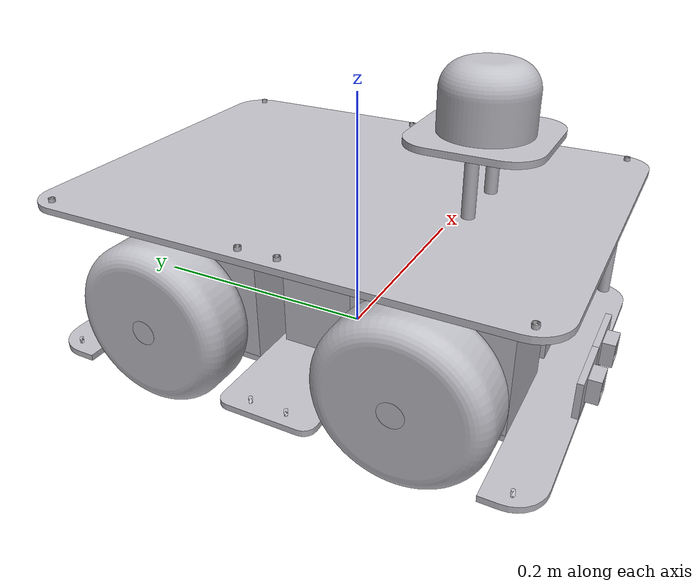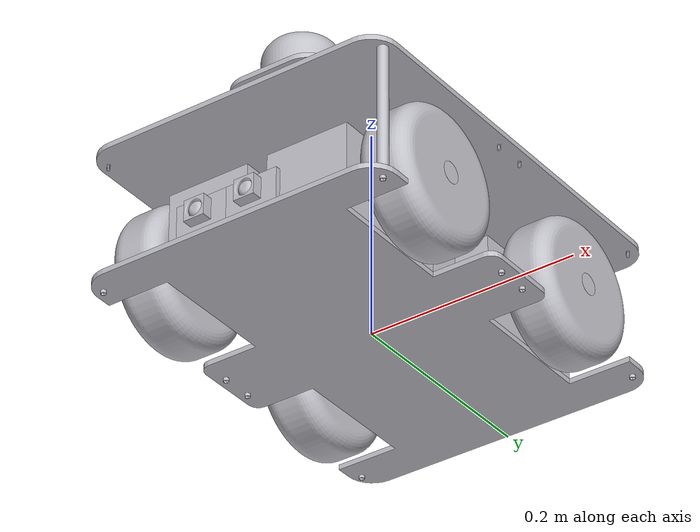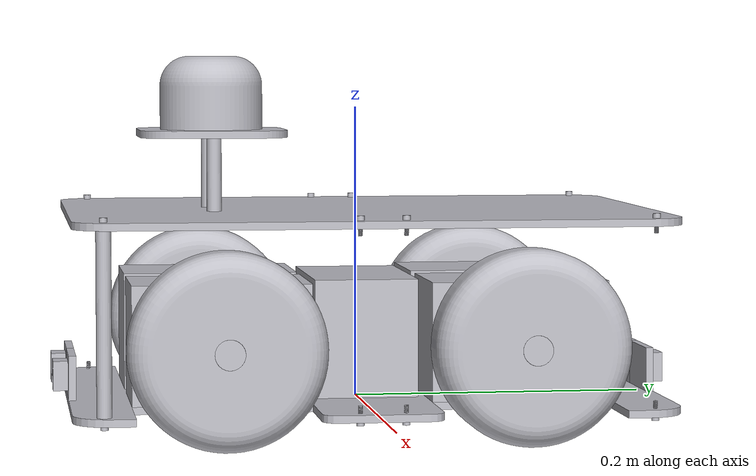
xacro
<?xml version="1.0" ?>
<robot name="robo_car" xmlns:xacro="http://www.ros.org/wiki/xacro">

<xacro:include filename="$(find robo_car_description)/urdf/materials.xacro" />
<xacro:include filename="$(find robo_car_description)/urdf/robo_car.trans" />
<xacro:include filename="$(find robo_car_description)/urdf/robo_car.gazebo" />
<link name="base_link">
  <inertial>
    <origin xyz="4.846217046677697e-08 -6.179082119768317e-08 0.0025" rpy="0 0 0"/>
    <mass value="3.5529521910732096"/>
    <inertia ixx="0.049309" iyy="0.018159" izz="0.067453" ixy="-0.0" iyz="0.0" ixz="0.0"/>
  </inertial>
  <visual>
    <origin xyz="0 0 0" rpy="0 0 0"/>
    <geometry>
      <mesh filename="package://robo_car_description/meshes/base_link.stl" scale="0.001 0.001 0.001"/>
    </geometry>
    <material name="silver"/>
  </visual>
  <collision>
    <origin xyz="0 0 0" rpy="0 0 0"/>
    <geometry>
      <mesh filename="package://robo_car_description/meshes/base_link.stl" scale="0.001 0.001 0.001"/>
    </geometry>
  </collision>
</link>

<link name="lidar_1">
  <inertial>
    <origin xyz="3.581160647436829e-07 1.942890293094024e-16 0.023103677466076777" rpy="0 0 0"/>
    <mass value="1.381244167216492"/>
    <inertia ixx="0.000654" iyy="0.000654" izz="0.000799" ixy="0.0" iyz="0.0" ixz="0.0"/>
  </inertial>
  <visual>
    <origin xyz="-1e-05 0.1 -0.185" rpy="0 0 0"/>
    <geometry>
      <mesh filename="package://robo_car_description/meshes/lidar_1.stl" scale="0.001 0.001 0.001"/>
    </geometry>
    <material name="silver"/>
  </visual>
  <collision>
    <origin xyz="-1e-05 0.1 -0.185" rpy="0 0 0"/>
    <geometry>
      <mesh filename="package://robo_car_description/meshes/lidar_1.stl" scale="0.001 0.001 0.001"/>
    </geometry>
  </collision>
</link>

<link name="top_sensor_base_1">
  <inertial>
    <origin xyz="0.02499828039379778 1.8041124150158794e-16 0.0025000000000000022" rpy="0 0 0"/>
    <mass value="0.3709181375758838"/>
    <inertia ixx="0.000286" iyy="0.000286" izz="0.00057" ixy="0.0" iyz="0.0" ixz="0.0"/>
  </inertial>
  <visual>
    <origin xyz="0.02499 0.1 -0.18" rpy="0 0 0"/>
    <geometry>
      <mesh filename="package://robo_car_description/meshes/top_sensor_base_1.stl" scale="0.001 0.001 0.001"/>
    </geometry>
    <material name="silver"/>
  </visual>
  <collision>
    <origin xyz="0.02499 0.1 -0.18" rpy="0 0 0"/>
    <geometry>
      <mesh filename="package://robo_car_description/meshes/top_sensor_base_1.stl" scale="0.001 0.001 0.001"/>
    </geometry>
  </collision>
</link>

<link name="top_left_front_nut_1">
  <inertial>
    <origin xyz="-3.540865805562454e-07 9.714065274391004e-09 -0.0027956933787600113" rpy="0 0 0"/>
    <mass value="0.0006726823080794735"/>
    <inertia ixx="0.0" iyy="0.0" izz="0.0" ixy="-0.0" iyz="0.0" ixz="-0.0"/>
  </inertial>
  <visual>
    <origin xyz="-0.13999 0.18 -0.13" rpy="0 0 0"/>
    <geometry>
      <mesh filename="package://robo_car_description/meshes/top_left_front_nut_1.stl" scale="0.001 0.001 0.001"/>
    </geometry>
    <material name="silver"/>
  </visual>
  <collision>
    <origin xyz="-0.13999 0.18 -0.13" rpy="0 0 0"/>
    <geometry>
      <mesh filename="package://robo_car_description/meshes/top_left_front_nut_1.stl" scale="0.001 0.001 0.001"/>
    </geometry>
  </collision>
</link>

<link name="top_body_1">
  <inertial>
    <origin xyz="-0.14000035934255764 0.1800118408863916 0.0025000000000000022" rpy="0 0 0"/>
    <mass value="0.7091932888683"/>
    <inertia ixx="0.009379" iyy="0.005274" izz="0.01465" ixy="-0.0" iyz="0.0" ixz="0.0"/>
  </inertial>
  <visual>
    <origin xyz="-0.13999 0.18 -0.125" rpy="0 0 0"/>
    <geometry>
      <mesh filename="package://robo_car_description/meshes/top_body_1.stl" scale="0.001 0.001 0.001"/>
    </geometry>
    <material name="silver"/>
  </visual>
  <collision>
    <origin xyz="-0.13999 0.18 -0.125" rpy="0 0 0"/>
    <geometry>
      <mesh filename="package://robo_car_description/meshes/top_body_1.stl" scale="0.001 0.001 0.001"/>
    </geometry>
  </collision>
</link>

<link name="left_front_spacer_1">
  <inertial>
    <origin xyz="-3.5811604917612705e-07 5.551115123125783e-17 0.060000000000000046" rpy="0 0 0"/>
    <mass value="0.06732590136275694"/>
    <inertia ixx="8.1e-05" iyy="8.1e-05" izz="1e-06" ixy="0.0" iyz="0.0" ixz="-0.0"/>
  </inertial>
  <visual>
    <origin xyz="-0.13999 0.18 -0.005" rpy="0 0 0"/>
    <geometry>
      <mesh filename="package://robo_car_description/meshes/left_front_spacer_1.stl" scale="0.001 0.001 0.001"/>
    </geometry>
    <material name="silver"/>
  </visual>
  <collision>
    <origin xyz="-0.13999 0.18 -0.005" rpy="0 0 0"/>
    <geometry>
      <mesh filename="package://robo_car_description/meshes/left_front_spacer_1.stl" scale="0.001 0.001 0.001"/>
    </geometry>
  </collision>
</link>

<link name="front_left_sensor_base_1">
  <inertial>
    <origin xyz="0.025 0.0025000000000000022 0.015" rpy="0 0 0"/>
    <mass value="0.058875"/>
    <inertia ixx="5e-06" iyy="1.7e-05" izz="1.2e-05" ixy="-0.0" iyz="-0.0" ixz="0.0"/>
  </inertial>
  <visual>
    <origin xyz="-0.0 0.2 -0.005" rpy="0 0 0"/>
    <geometry>
      <mesh filename="package://robo_car_description/meshes/front_left_sensor_base_1.stl" scale="0.001 0.001 0.001"/>
    </geometry>
    <material name="silver"/>
  </visual>
  <collision>
    <origin xyz="-0.0 0.2 -0.005" rpy="0 0 0"/>
    <geometry>
      <mesh filename="package://robo_car_description/meshes/front_left_sensor_base_1.stl" scale="0.001 0.001 0.001"/>
    </geometry>
  </collision>
</link>

<link name="front_left_sensor_camera_base_1">
  <inertial>
    <origin xyz="2.2309584735147325e-13 -0.004272796235665149 0.0" rpy="0 0 0"/>
    <mass value="0.02438220210748266"/>
    <inertia ixx="1e-06" iyy="2e-06" izz="1e-06" ixy="0.0" iyz="0.0" ixz="-0.0"/>
  </inertial>
  <visual>
    <origin xyz="-0.025 0.2 -0.02" rpy="0 0 0"/>
    <geometry>
      <mesh filename="package://robo_car_description/meshes/front_left_sensor_camera_base_1.stl" scale="0.001 0.001 0.001"/>
    </geometry>
    <material name="silver"/>
  </visual>
  <collision>
    <origin xyz="-0.025 0.2 -0.02" rpy="0 0 0"/>
    <geometry>
      <mesh filename="package://robo_car_description/meshes/front_left_sensor_camera_base_1.stl" scale="0.001 0.001 0.001"/>
    </geometry>
  </collision>
</link>

<link name="left_front_wheel_1">
  <inertial>
    <origin xyz="-0.024999999999999994 -2.6867397195928788e-14 -6.938893903907228e-18" rpy="0 0 0"/>
    <mass value="4.7927883092493"/>
    <inertia ixx="0.009877" iyy="0.005859" izz="0.005859" ixy="-0.0" iyz="-0.0" ixz="0.0"/>
  </inertial>
  <visual>
    <origin xyz="-0.15 0.1 -0.045" rpy="0 0 0"/>
    <geometry>
      <mesh filename="package://robo_car_description/meshes/left_front_wheel_1.stl" scale="0.001 0.001 0.001"/>
    </geometry>
    <material name="silver"/>
  </visual>
  <collision>
    <origin xyz="-0.15 0.1 -0.045" rpy="0 0 0"/>
    <geometry>
      <mesh filename="package://robo_car_description/meshes/left_front_wheel_1.stl" scale="0.001 0.001 0.001"/>
    </geometry>
  </collision>
</link>

<link name="left_front_motor_1">
  <inertial>
    <origin xyz="-0.03831922333903622 -5.0182080713057076e-14 0.04" rpy="0 0 0"/>
    <mass value="6.162526657733214"/>
    <inertia ixx="0.010399" iyy="0.007171" izz="0.011147" ixy="0.0" iyz="0.0" ixz="0.0"/>
  </inertial>
  <visual>
    <origin xyz="-0.09 0.1 -0.005" rpy="0 0 0"/>
    <geometry>
      <mesh filename="package://robo_car_description/meshes/left_front_motor_1.stl" scale="0.001 0.001 0.001"/>
    </geometry>
    <material name="silver"/>
  </visual>
  <collision>
    <origin xyz="-0.09 0.1 -0.005" rpy="0 0 0"/>
    <geometry>
      <mesh filename="package://robo_car_description/meshes/left_front_motor_1.stl" scale="0.001 0.001 0.001"/>
    </geometry>
  </collision>
</link>

<link name="top_right_front_nut_1">
  <inertial>
    <origin xyz="-3.6214554982594294e-07 9.714064108656828e-09 -0.0027956933787592064" rpy="0 0 0"/>
    <mass value="0.0006726823080794735"/>
    <inertia ixx="0.0" iyy="0.0" izz="0.0" ixy="0.0" iyz="0.0" ixz="0.0"/>
  </inertial>
  <visual>
    <origin xyz="0.14001 0.18 -0.13" rpy="0 0 0"/>
    <geometry>
      <mesh filename="package://robo_car_description/meshes/top_right_front_nut_1.stl" scale="0.001 0.001 0.001"/>
    </geometry>
    <material name="silver"/>
  </visual>
  <collision>
    <origin xyz="0.14001 0.18 -0.13" rpy="0 0 0"/>
    <geometry>
      <mesh filename="package://robo_car_description/meshes/top_right_front_nut_1.stl" scale="0.001 0.001 0.001"/>
    </geometry>
  </collision>
</link>

<link name="top_left_front_mid_nut_1">
  <inertial>
    <origin xyz="-3.5408658335955856e-07 -1.2619770655558638e-08 -0.002795693378762426" rpy="0 0 0"/>
    <mass value="0.0006726823080794698"/>
    <inertia ixx="0.0" iyy="0.0" izz="0.0" ixy="0.0" iyz="-0.0" ixz="-0.0"/>
  </inertial>
  <visual>
    <origin xyz="-0.13999 0.015 -0.13" rpy="0 0 0"/>
    <geometry>
      <mesh filename="package://robo_car_description/meshes/top_left_front_mid_nut_1.stl" scale="0.001 0.001 0.001"/>
    </geometry>
    <material name="silver"/>
  </visual>
  <collision>
    <origin xyz="-0.13999 0.015 -0.13" rpy="0 0 0"/>
    <geometry>
      <mesh filename="package://robo_car_description/meshes/top_left_front_mid_nut_1.stl" scale="0.001 0.001 0.001"/>
    </geometry>
  </collision>
</link>

<link name="top_left_back_mid_nut_1">
  <inertial>
    <origin xyz="-3.540865838591589e-07 1.2619770948726905e-08 -0.00279569337876287" rpy="0 0 0"/>
    <mass value="0.0006726823080794667"/>
    <inertia ixx="0.0" iyy="0.0" izz="0.0" ixy="-0.0" iyz="0.0" ixz="-0.0"/>
  </inertial>
  <visual>
    <origin xyz="-0.13999 -0.015 -0.13" rpy="0 0 0"/>
    <geometry>
      <mesh filename="package://robo_car_description/meshes/top_left_back_mid_nut_1.stl" scale="0.001 0.001 0.001"/>
    </geometry>
    <material name="silver"/>
  </visual>
  <collision>
    <origin xyz="-0.13999 -0.015 -0.13" rpy="0 0 0"/>
    <geometry>
      <mesh filename="package://robo_car_description/meshes/top_left_back_mid_nut_1.stl" scale="0.001 0.001 0.001"/>
    </geometry>
  </collision>
</link>

<link name="top_left_back_nut_1">
  <inertial>
    <origin xyz="-3.5408657964031143e-07 -9.714063747834345e-09 -0.0027956933787592064" rpy="0 0 0"/>
    <mass value="0.0006726823080794735"/>
    <inertia ixx="0.0" iyy="0.0" izz="0.0" ixy="0.0" iyz="-0.0" ixz="-0.0"/>
  </inertial>
  <visual>
    <origin xyz="-0.13999 -0.18 -0.13" rpy="0 0 0"/>
    <geometry>
      <mesh filename="package://robo_car_description/meshes/top_left_back_nut_1.stl" scale="0.001 0.001 0.001"/>
    </geometry>
    <material name="silver"/>
  </visual>
  <collision>
    <origin xyz="-0.13999 -0.18 -0.13" rpy="0 0 0"/>
    <geometry>
      <mesh filename="package://robo_car_description/meshes/top_left_back_nut_1.stl" scale="0.001 0.001 0.001"/>
    </geometry>
  </collision>
</link>

<link name="top_right_back_nut_1">
  <inertial>
    <origin xyz="-3.621455489377645e-07 -9.714064913568521e-09 -0.0027956933787600113" rpy="0 0 0"/>
    <mass value="0.0006726823080794735"/>
    <inertia ixx="0.0" iyy="0.0" izz="0.0" ixy="-0.0" iyz="-0.0" ixz="0.0"/>
  </inertial>
  <visual>
    <origin xyz="0.14001 -0.18 -0.13" rpy="0 0 0"/>
    <geometry>
      <mesh filename="package://robo_car_description/meshes/top_right_back_nut_1.stl" scale="0.001 0.001 0.001"/>
    </geometry>
    <material name="silver"/>
  </visual>
  <collision>
    <origin xyz="0.14001 -0.18 -0.13" rpy="0 0 0"/>
    <geometry>
      <mesh filename="package://robo_car_description/meshes/top_right_back_nut_1.stl" scale="0.001 0.001 0.001"/>
    </geometry>
  </collision>
</link>

<link name="top_right_back_mid_nut_1">
  <inertial>
    <origin xyz="-3.621455461344514e-07 1.2619771004238056e-08 -0.002795693378762426" rpy="0 0 0"/>
    <mass value="0.0006726823080794698"/>
    <inertia ixx="0.0" iyy="0.0" izz="0.0" ixy="0.0" iyz="0.0" ixz="0.0"/>
  </inertial>
  <visual>
    <origin xyz="0.14001 -0.015 -0.13" rpy="0 0 0"/>
    <geometry>
      <mesh filename="package://robo_car_description/meshes/top_right_back_mid_nut_1.stl" scale="0.001 0.001 0.001"/>
    </geometry>
    <material name="silver"/>
  </visual>
  <collision>
    <origin xyz="0.14001 -0.015 -0.13" rpy="0 0 0"/>
    <geometry>
      <mesh filename="package://robo_car_description/meshes/top_right_back_mid_nut_1.stl" scale="0.001 0.001 0.001"/>
    </geometry>
  </collision>
</link>

<link name="top_right_front_mid_nut_1">
  <inertial>
    <origin xyz="-3.621455456626066e-07 -1.2619770605251657e-08 -0.00279569337876287" rpy="0 0 0"/>
    <mass value="0.0006726823080794667"/>
    <inertia ixx="0.0" iyy="0.0" izz="0.0" ixy="-0.0" iyz="-0.0" ixz="0.0"/>
  </inertial>
  <visual>
    <origin xyz="0.14001 0.015 -0.13" rpy="0 0 0"/>
    <geometry>
      <mesh filename="package://robo_car_description/meshes/top_right_front_mid_nut_1.stl" scale="0.001 0.001 0.001"/>
    </geometry>
    <material name="silver"/>
  </visual>
  <collision>
    <origin xyz="0.14001 0.015 -0.13" rpy="0 0 0"/>
    <geometry>
      <mesh filename="package://robo_car_description/meshes/top_right_front_mid_nut_1.stl" scale="0.001 0.001 0.001"/>
    </geometry>
  </collision>
</link>

<link name="bottom_right_back_mid_nut_1">
  <inertial>
    <origin xyz="6.342173924922534e-09 6.7528682697742815e-09 0.002795610149597566" rpy="0 0 0"/>
    <mass value="0.0006726935738687003"/>
    <inertia ixx="0.0" iyy="0.0" izz="0.0" ixy="0.0" iyz="-0.0" ixz="-0.0"/>
  </inertial>
  <visual>
    <origin xyz="0.14 -0.015 -0.0" rpy="0 0 0"/>
    <geometry>
      <mesh filename="package://robo_car_description/meshes/bottom_right_back_mid_nut_1.stl" scale="0.001 0.001 0.001"/>
    </geometry>
    <material name="silver"/>
  </visual>
  <collision>
    <origin xyz="0.14 -0.015 -0.0" rpy="0 0 0"/>
    <geometry>
      <mesh filename="package://robo_car_description/meshes/bottom_right_back_mid_nut_1.stl" scale="0.001 0.001 0.001"/>
    </geometry>
  </collision>
</link>

<link name="bottom_right_back_nut_1">
  <inertial>
    <origin xyz="6.342180752794135e-09 -6.7528378999703875e-09 0.002795610149597511" rpy="0 0 0"/>
    <mass value="0.000672693573868713"/>
    <inertia ixx="0.0" iyy="0.0" izz="0.0" ixy="-0.0" iyz="0.0" ixz="-0.0"/>
  </inertial>
  <visual>
    <origin xyz="0.14 -0.18 -0.0" rpy="0 0 0"/>
    <geometry>
      <mesh filename="package://robo_car_description/meshes/bottom_right_back_nut_1.stl" scale="0.001 0.001 0.001"/>
    </geometry>
    <material name="silver"/>
  </visual>
  <collision>
    <origin xyz="0.14 -0.18 -0.0" rpy="0 0 0"/>
    <geometry>
      <mesh filename="package://robo_car_description/meshes/bottom_right_back_nut_1.stl" scale="0.001 0.001 0.001"/>
    </geometry>
  </collision>
</link>

<link name="bottom_left_back_nut_1">
  <inertial>
    <origin xyz="-3.665444069100854e-07 -9.435045633665595e-09 0.002795610149597505" rpy="0 0 0"/>
    <mass value="0.000672693573868716"/>
    <inertia ixx="0.0" iyy="0.0" izz="0.0" ixy="0.0" iyz="0.0" ixz="0.0"/>
  </inertial>
  <visual>
    <origin xyz="-0.13999 -0.18 -0.0" rpy="0 0 0"/>
    <geometry>
      <mesh filename="package://robo_car_description/meshes/bottom_left_back_nut_1.stl" scale="0.001 0.001 0.001"/>
    </geometry>
    <material name="silver"/>
  </visual>
  <collision>
    <origin xyz="-0.13999 -0.18 -0.0" rpy="0 0 0"/>
    <geometry>
      <mesh filename="package://robo_car_description/meshes/bottom_left_back_nut_1.stl" scale="0.001 0.001 0.001"/>
    </geometry>
  </collision>
</link>

<link name="bottom_right_front_nut_1">
  <inertial>
    <origin xyz="3.665444069100854e-07 9.435045633665595e-09 0.002795610149597505" rpy="0 0 0"/>
    <mass value="0.000672693573868716"/>
    <inertia ixx="0.0" iyy="0.0" izz="0.0" ixy="0.0" iyz="-0.0" ixz="-0.0"/>
  </inertial>
  <visual>
    <origin xyz="0.13999 0.18 -0.0" rpy="0 0 0"/>
    <geometry>
      <mesh filename="package://robo_car_description/meshes/bottom_right_front_nut_1.stl" scale="0.001 0.001 0.001"/>
    </geometry>
    <material name="silver"/>
  </visual>
  <collision>
    <origin xyz="0.13999 0.18 -0.0" rpy="0 0 0"/>
    <geometry>
      <mesh filename="package://robo_car_description/meshes/bottom_right_front_nut_1.stl" scale="0.001 0.001 0.001"/>
    </geometry>
  </collision>
</link>

<link name="bottom_left_back_mid_nut_1">
  <inertial>
    <origin xyz="-6.342175062901134e-09 6.752868143139468e-09 0.002795610149597549" rpy="0 0 0"/>
    <mass value="0.0006726935738686988"/>
    <inertia ixx="0.0" iyy="0.0" izz="0.0" ixy="-0.0" iyz="-0.0" ixz="0.0"/>
  </inertial>
  <visual>
    <origin xyz="-0.14 -0.015 -0.0" rpy="0 0 0"/>
    <geometry>
      <mesh filename="package://robo_car_description/meshes/bottom_left_back_mid_nut_1.stl" scale="0.001 0.001 0.001"/>
    </geometry>
    <material name="silver"/>
  </visual>
  <collision>
    <origin xyz="-0.14 -0.015 -0.0" rpy="0 0 0"/>
    <geometry>
      <mesh filename="package://robo_car_description/meshes/bottom_left_back_mid_nut_1.stl" scale="0.001 0.001 0.001"/>
    </geometry>
  </collision>
</link>

<link name="bottom_left_front_mid_nut_1">
  <inertial>
    <origin xyz="-6.342173924922534e-09 -6.7528682628353875e-09 0.002795610149597566" rpy="0 0 0"/>
    <mass value="0.0006726935738687003"/>
    <inertia ixx="0.0" iyy="0.0" izz="0.0" ixy="0.0" iyz="0.0" ixz="0.0"/>
  </inertial>
  <visual>
    <origin xyz="-0.14 0.015 -0.0" rpy="0 0 0"/>
    <geometry>
      <mesh filename="package://robo_car_description/meshes/bottom_left_front_mid_nut_1.stl" scale="0.001 0.001 0.001"/>
    </geometry>
    <material name="silver"/>
  </visual>
  <collision>
    <origin xyz="-0.14 0.015 -0.0" rpy="0 0 0"/>
    <geometry>
      <mesh filename="package://robo_car_description/meshes/bottom_left_front_mid_nut_1.stl" scale="0.001 0.001 0.001"/>
    </geometry>
  </collision>
</link>

<link name="top_right_spacer_1">
  <inertial>
    <origin xyz="3.6496444748290724e-07 -2.425839057407231e-09 0.024999998936239" rpy="0 0 0"/>
    <mass value="0.02847558662730686"/>
    <inertia ixx="6e-06" iyy="6e-06" izz="0.0" ixy="0.0" iyz="-0.0" ixz="-0.0"/>
  </inertial>
  <visual>
    <origin xyz="0.02499 0.1 -0.13" rpy="0 0 0"/>
    <geometry>
      <mesh filename="package://robo_car_description/meshes/top_right_spacer_1.stl" scale="0.001 0.001 0.001"/>
    </geometry>
    <material name="silver"/>
  </visual>
  <collision>
    <origin xyz="0.02499 0.1 -0.13" rpy="0 0 0"/>
    <geometry>
      <mesh filename="package://robo_car_description/meshes/top_right_spacer_1.stl" scale="0.001 0.001 0.001"/>
    </geometry>
  </collision>
</link>

<link name="top_left_spacer_1">
  <inertial>
    <origin xyz="-3.64964446844529e-07 2.4258322850467806e-09 0.024999998936242884" rpy="0 0 0"/>
    <mass value="0.028475586627305986"/>
    <inertia ixx="6e-06" iyy="6e-06" izz="0.0" ixy="0.0" iyz="0.0" ixz="0.0"/>
  </inertial>
  <visual>
    <origin xyz="-0.02499 0.1 -0.13" rpy="0 0 0"/>
    <geometry>
      <mesh filename="package://robo_car_description/meshes/top_left_spacer_1.stl" scale="0.001 0.001 0.001"/>
    </geometry>
    <material name="silver"/>
  </visual>
  <collision>
    <origin xyz="-0.02499 0.1 -0.13" rpy="0 0 0"/>
    <geometry>
      <mesh filename="package://robo_car_description/meshes/top_left_spacer_1.stl" scale="0.001 0.001 0.001"/>
    </geometry>
  </collision>
</link>

<link name="right_front_motor_1">
  <inertial>
    <origin xyz="0.03831922333903623 -5.0154325137441447e-14 0.04" rpy="0 0 0"/>
    <mass value="6.162526657733214"/>
    <inertia ixx="0.010399" iyy="0.007171" izz="0.011147" ixy="-0.0" iyz="0.0" ixz="-0.0"/>
  </inertial>
  <visual>
    <origin xyz="0.09 0.1 -0.005" rpy="0 0 0"/>
    <geometry>
      <mesh filename="package://robo_car_description/meshes/right_front_motor_1.stl" scale="0.001 0.001 0.001"/>
    </geometry>
    <material name="silver"/>
  </visual>
  <collision>
    <origin xyz="0.09 0.1 -0.005" rpy="0 0 0"/>
    <geometry>
      <mesh filename="package://robo_car_description/meshes/right_front_motor_1.stl" scale="0.001 0.001 0.001"/>
    </geometry>
  </collision>
</link>

<link name="left_back_motor_1">
  <inertial>
    <origin xyz="-0.03831922333903623 5.019595850086489e-14 0.04" rpy="0 0 0"/>
    <mass value="6.162526657733214"/>
    <inertia ixx="0.010399" iyy="0.007171" izz="0.011147" ixy="-0.0" iyz="0.0" ixz="0.0"/>
  </inertial>
  <visual>
    <origin xyz="-0.09 -0.1 -0.005" rpy="0 0 0"/>
    <geometry>
      <mesh filename="package://robo_car_description/meshes/left_back_motor_1.stl" scale="0.001 0.001 0.001"/>
    </geometry>
    <material name="silver"/>
  </visual>
  <collision>
    <origin xyz="-0.09 -0.1 -0.005" rpy="0 0 0"/>
    <geometry>
      <mesh filename="package://robo_car_description/meshes/left_back_motor_1.stl" scale="0.001 0.001 0.001"/>
    </geometry>
  </collision>
</link>

<link name="right_back_motor_1">
  <inertial>
    <origin xyz="0.03831922333903622 5.019595850086489e-14 0.04" rpy="0 0 0"/>
    <mass value="6.162526657733214"/>
    <inertia ixx="0.010399" iyy="0.007171" izz="0.011147" ixy="0.0" iyz="0.0" ixz="-0.0"/>
  </inertial>
  <visual>
    <origin xyz="0.09 -0.1 -0.005" rpy="0 0 0"/>
    <geometry>
      <mesh filename="package://robo_car_description/meshes/right_back_motor_1.stl" scale="0.001 0.001 0.001"/>
    </geometry>
    <material name="silver"/>
  </visual>
  <collision>
    <origin xyz="0.09 -0.1 -0.005" rpy="0 0 0"/>
    <geometry>
      <mesh filename="package://robo_car_description/meshes/right_back_motor_1.stl" scale="0.001 0.001 0.001"/>
    </geometry>
  </collision>
</link>

<link name="left_back_wheel_1">
  <inertial>
    <origin xyz="-0.024999999999999994 2.6895152771544417e-14 -6.938893903907228e-18" rpy="0 0 0"/>
    <mass value="4.792788309249298"/>
    <inertia ixx="0.009877" iyy="0.005859" izz="0.005859" ixy="0.0" iyz="0.0" ixz="-0.0"/>
  </inertial>
  <visual>
    <origin xyz="-0.15 -0.1 -0.045" rpy="0 0 0"/>
    <geometry>
      <mesh filename="package://robo_car_description/meshes/left_back_wheel_1.stl" scale="0.001 0.001 0.001"/>
    </geometry>
    <material name="silver"/>
  </visual>
  <collision>
    <origin xyz="-0.15 -0.1 -0.045" rpy="0 0 0"/>
    <geometry>
      <mesh filename="package://robo_car_description/meshes/left_back_wheel_1.stl" scale="0.001 0.001 0.001"/>
    </geometry>
  </collision>
</link>

<link name="right_front_wheel_1">
  <inertial>
    <origin xyz="0.024999999999999967 -2.683964162031316e-14 -6.938893903907228e-18" rpy="0 0 0"/>
    <mass value="4.792788309249299"/>
    <inertia ixx="0.009877" iyy="0.005859" izz="0.005859" ixy="0.0" iyz="-0.0" ixz="-0.0"/>
  </inertial>
  <visual>
    <origin xyz="0.15 0.1 -0.045" rpy="0 0 0"/>
    <geometry>
      <mesh filename="package://robo_car_description/meshes/right_front_wheel_1.stl" scale="0.001 0.001 0.001"/>
    </geometry>
    <material name="silver"/>
  </visual>
  <collision>
    <origin xyz="0.15 0.1 -0.045" rpy="0 0 0"/>
    <geometry>
      <mesh filename="package://robo_car_description/meshes/right_front_wheel_1.stl" scale="0.001 0.001 0.001"/>
    </geometry>
  </collision>
</link>

<link name="right_back_wheel_1">
  <inertial>
    <origin xyz="0.024999999999999967 2.6853519408120974e-14 -6.938893903907228e-18" rpy="0 0 0"/>
    <mass value="4.792788309249299"/>
    <inertia ixx="0.009877" iyy="0.005859" izz="0.005859" ixy="0.0" iyz="0.0" ixz="-0.0"/>
  </inertial>
  <visual>
    <origin xyz="0.15 -0.1 -0.045" rpy="0 0 0"/>
    <geometry>
      <mesh filename="package://robo_car_description/meshes/right_back_wheel_1.stl" scale="0.001 0.001 0.001"/>
    </geometry>
    <material name="silver"/>
  </visual>
  <collision>
    <origin xyz="0.15 -0.1 -0.045" rpy="0 0 0"/>
    <geometry>
      <mesh filename="package://robo_car_description/meshes/right_back_wheel_1.stl" scale="0.001 0.001 0.001"/>
    </geometry>
  </collision>
</link>

<link name="front_right_sensor_base_1">
  <inertial>
    <origin xyz="-0.025 0.0025000000000000022 0.015" rpy="0 0 0"/>
    <mass value="0.058875"/>
    <inertia ixx="5e-06" iyy="1.7e-05" izz="1.2e-05" ixy="0.0" iyz="-0.0" ixz="0.0"/>
  </inertial>
  <visual>
    <origin xyz="-0.0 0.2 -0.005" rpy="0 0 0"/>
    <geometry>
      <mesh filename="package://robo_car_description/meshes/front_right_sensor_base_1.stl" scale="0.001 0.001 0.001"/>
    </geometry>
    <material name="silver"/>
  </visual>
  <collision>
    <origin xyz="-0.0 0.2 -0.005" rpy="0 0 0"/>
    <geometry>
      <mesh filename="package://robo_car_description/meshes/front_right_sensor_base_1.stl" scale="0.001 0.001 0.001"/>
    </geometry>
  </collision>
</link>

<link name="front_right_sensor_camera_base_1">
  <inertial>
    <origin xyz="-2.230993167984252e-13 -0.004272796235665149 0.0" rpy="0 0 0"/>
    <mass value="0.02438220210748266"/>
    <inertia ixx="1e-06" iyy="2e-06" izz="1e-06" ixy="-0.0" iyz="0.0" ixz="-0.0"/>
  </inertial>
  <visual>
    <origin xyz="0.025 0.2 -0.02" rpy="0 0 0"/>
    <geometry>
      <mesh filename="package://robo_car_description/meshes/front_right_sensor_camera_base_1.stl" scale="0.001 0.001 0.001"/>
    </geometry>
    <material name="silver"/>
  </visual>
  <collision>
    <origin xyz="0.025 0.2 -0.02" rpy="0 0 0"/>
    <geometry>
      <mesh filename="package://robo_car_description/meshes/front_right_sensor_camera_base_1.stl" scale="0.001 0.001 0.001"/>
    </geometry>
  </collision>
</link>

<link name="battery_1">
  <inertial>
    <origin xyz="0.0 0.0 0.04" rpy="0 0 0"/>
    <mass value="5.275199999999998"/>
    <inertia ixx="0.004967" iyy="0.009144" izz="0.008484" ixy="0.0" iyz="0.0" ixz="0.0"/>
  </inertial>
  <visual>
    <origin xyz="-0.0 -0.0 -0.005" rpy="0 0 0"/>
    <geometry>
      <mesh filename="package://robo_car_description/meshes/battery_1.stl" scale="0.001 0.001 0.001"/>
    </geometry>
    <material name="silver"/>
  </visual>
  <collision>
    <origin xyz="-0.0 -0.0 -0.005" rpy="0 0 0"/>
    <geometry>
      <mesh filename="package://robo_car_description/meshes/battery_1.stl" scale="0.001 0.001 0.001"/>
    </geometry>
  </collision>
</link>

<link name="back_right_sensor_base_1">
  <inertial>
    <origin xyz="-0.025 -0.0025000000000000022 0.015" rpy="0 0 0"/>
    <mass value="0.058875"/>
    <inertia ixx="5e-06" iyy="1.7e-05" izz="1.2e-05" ixy="-0.0" iyz="0.0" ixz="0.0"/>
  </inertial>
  <visual>
    <origin xyz="-0.0 -0.2 -0.005" rpy="0 0 0"/>
    <geometry>
      <mesh filename="package://robo_car_description/meshes/back_right_sensor_base_1.stl" scale="0.001 0.001 0.001"/>
    </geometry>
    <material name="silver"/>
  </visual>
  <collision>
    <origin xyz="-0.0 -0.2 -0.005" rpy="0 0 0"/>
    <geometry>
      <mesh filename="package://robo_car_description/meshes/back_right_sensor_base_1.stl" scale="0.001 0.001 0.001"/>
    </geometry>
  </collision>
</link>

<link name="back_left_sensor_base_1">
  <inertial>
    <origin xyz="0.025 -0.0025000000000000022 0.015" rpy="0 0 0"/>
    <mass value="0.058875"/>
    <inertia ixx="5e-06" iyy="1.7e-05" izz="1.2e-05" ixy="0.0" iyz="0.0" ixz="0.0"/>
  </inertial>
  <visual>
    <origin xyz="-0.0 -0.2 -0.005" rpy="0 0 0"/>
    <geometry>
      <mesh filename="package://robo_car_description/meshes/back_left_sensor_base_1.stl" scale="0.001 0.001 0.001"/>
    </geometry>
    <material name="silver"/>
  </visual>
  <collision>
    <origin xyz="-0.0 -0.2 -0.005" rpy="0 0 0"/>
    <geometry>
      <mesh filename="package://robo_car_description/meshes/back_left_sensor_base_1.stl" scale="0.001 0.001 0.001"/>
    </geometry>
  </collision>
</link>

<link name="back_left_sensor_camera_base_1">
  <inertial>
    <origin xyz="0.0 0.004272796235665177 0.0" rpy="0 0 0"/>
    <mass value="0.024382202107482962"/>
    <inertia ixx="1e-06" iyy="2e-06" izz="1e-06" ixy="0.0" iyz="0.0" ixz="0.0"/>
  </inertial>
  <visual>
    <origin xyz="-0.025 -0.2 -0.02" rpy="0 0 0"/>
    <geometry>
      <mesh filename="package://robo_car_description/meshes/back_left_sensor_camera_base_1.stl" scale="0.001 0.001 0.001"/>
    </geometry>
    <material name="silver"/>
  </visual>
  <collision>
    <origin xyz="-0.025 -0.2 -0.02" rpy="0 0 0"/>
    <geometry>
      <mesh filename="package://robo_car_description/meshes/back_left_sensor_camera_base_1.stl" scale="0.001 0.001 0.001"/>
    </geometry>
  </collision>
</link>

<link name="bottom_left_front_nut_1">
  <inertial>
    <origin xyz="-3.665444079092861e-07 9.435046910422074e-09 0.002795610149597511" rpy="0 0 0"/>
    <mass value="0.000672693573868713"/>
    <inertia ixx="0.0" iyy="0.0" izz="0.0" ixy="-0.0" iyz="-0.0" ixz="0.0"/>
  </inertial>
  <visual>
    <origin xyz="-0.13999 0.18 -0.0" rpy="0 0 0"/>
    <geometry>
      <mesh filename="package://robo_car_description/meshes/bottom_left_front_nut_1.stl" scale="0.001 0.001 0.001"/>
    </geometry>
    <material name="silver"/>
  </visual>
  <collision>
    <origin xyz="-0.13999 0.18 -0.0" rpy="0 0 0"/>
    <geometry>
      <mesh filename="package://robo_car_description/meshes/bottom_left_front_nut_1.stl" scale="0.001 0.001 0.001"/>
    </geometry>
  </collision>
</link>

<link name="bottom_right_front_mid_nut_1">
  <inertial>
    <origin xyz="6.34217509065671e-09 -6.752868146608915e-09 0.002795610149597549" rpy="0 0 0"/>
    <mass value="0.0006726935738686988"/>
    <inertia ixx="0.0" iyy="0.0" izz="0.0" ixy="-0.0" iyz="0.0" ixz="-0.0"/>
  </inertial>
  <visual>
    <origin xyz="0.14 0.015 -0.0" rpy="0 0 0"/>
    <geometry>
      <mesh filename="package://robo_car_description/meshes/bottom_right_front_mid_nut_1.stl" scale="0.001 0.001 0.001"/>
    </geometry>
    <material name="silver"/>
  </visual>
  <collision>
    <origin xyz="0.14 0.015 -0.0" rpy="0 0 0"/>
    <geometry>
      <mesh filename="package://robo_car_description/meshes/bottom_right_front_mid_nut_1.stl" scale="0.001 0.001 0.001"/>
    </geometry>
  </collision>
</link>

<link name="front_right_sensor_camera_1">
  <inertial>
    <origin xyz="0.0 -0.0020808059740786977 0.0" rpy="0 0 0"/>
    <mass value="0.005246934471699298"/>
    <inertia ixx="0.0" iyy="0.0" izz="0.0" ixy="0.0" iyz="0.0" ixz="0.0"/>
  </inertial>
  <visual>
    <origin xyz="0.025 0.205 -0.02" rpy="0 0 0"/>
    <geometry>
      <mesh filename="package://robo_car_description/meshes/front_right_sensor_camera_1.stl" scale="0.001 0.001 0.001"/>
    </geometry>
    <material name="silver"/>
  </visual>
  <collision>
    <origin xyz="0.025 0.205 -0.02" rpy="0 0 0"/>
    <geometry>
      <mesh filename="package://robo_car_description/meshes/front_right_sensor_camera_1.stl" scale="0.001 0.001 0.001"/>
    </geometry>
  </collision>
</link>

<link name="front_left_sensor_camera_1">
  <inertial>
    <origin xyz="3.469446951953614e-18 -0.0020808059740786977 0.0" rpy="0 0 0"/>
    <mass value="0.005246934471699298"/>
    <inertia ixx="0.0" iyy="0.0" izz="0.0" ixy="0.0" iyz="0.0" ixz="0.0"/>
  </inertial>
  <visual>
    <origin xyz="-0.025 0.205 -0.02" rpy="0 0 0"/>
    <geometry>
      <mesh filename="package://robo_car_description/meshes/front_left_sensor_camera_1.stl" scale="0.001 0.001 0.001"/>
    </geometry>
    <material name="silver"/>
  </visual>
  <collision>
    <origin xyz="-0.025 0.205 -0.02" rpy="0 0 0"/>
    <geometry>
      <mesh filename="package://robo_car_description/meshes/front_left_sensor_camera_1.stl" scale="0.001 0.001 0.001"/>
    </geometry>
  </collision>
</link>

<link name="back_left_sensor_camera_1">
  <inertial>
    <origin xyz="-3.8403308311174555e-14 0.0020808059740787255 -3.469446951953614e-18" rpy="0 0 0"/>
    <mass value="0.0052469344716993315"/>
    <inertia ixx="0.0" iyy="0.0" izz="0.0" ixy="0.0" iyz="0.0" ixz="-0.0"/>
  </inertial>
  <visual>
    <origin xyz="-0.025 -0.205 -0.02" rpy="0 0 0"/>
    <geometry>
      <mesh filename="package://robo_car_description/meshes/back_left_sensor_camera_1.stl" scale="0.001 0.001 0.001"/>
    </geometry>
    <material name="silver"/>
  </visual>
  <collision>
    <origin xyz="-0.025 -0.205 -0.02" rpy="0 0 0"/>
    <geometry>
      <mesh filename="package://robo_car_description/meshes/back_left_sensor_camera_1.stl" scale="0.001 0.001 0.001"/>
    </geometry>
  </collision>
</link>

<link name="back_right_sensor_camera_1">
  <inertial>
    <origin xyz="3.839636941727065e-14 0.0020808059740787255 0.0" rpy="0 0 0"/>
    <mass value="0.005246934471699331"/>
    <inertia ixx="0.0" iyy="0.0" izz="0.0" ixy="-0.0" iyz="0.0" ixz="0.0"/>
  </inertial>
  <visual>
    <origin xyz="0.025 -0.205 -0.02" rpy="0 0 0"/>
    <geometry>
      <mesh filename="package://robo_car_description/meshes/back_right_sensor_camera_1.stl" scale="0.001 0.001 0.001"/>
    </geometry>
    <material name="silver"/>
  </visual>
  <collision>
    <origin xyz="0.025 -0.205 -0.02" rpy="0 0 0"/>
    <geometry>
      <mesh filename="package://robo_car_description/meshes/back_right_sensor_camera_1.stl" scale="0.001 0.001 0.001"/>
    </geometry>
  </collision>
</link>

<link name="back_right_sensor_camera_base_1">
  <inertial>
    <origin xyz="0.0 0.004272796235665177 -3.469446951953614e-18" rpy="0 0 0"/>
    <mass value="0.02438220210748296"/>
    <inertia ixx="1e-06" iyy="2e-06" izz="1e-06" ixy="-0.0" iyz="0.0" ixz="-0.0"/>
  </inertial>
  <visual>
    <origin xyz="0.025 -0.2 -0.02" rpy="0 0 0"/>
    <geometry>
      <mesh filename="package://robo_car_description/meshes/back_right_sensor_camera_base_1.stl" scale="0.001 0.001 0.001"/>
    </geometry>
    <material name="silver"/>
  </visual>
  <collision>
    <origin xyz="0.025 -0.2 -0.02" rpy="0 0 0"/>
    <geometry>
      <mesh filename="package://robo_car_description/meshes/back_right_sensor_camera_base_1.stl" scale="0.001 0.001 0.001"/>
    </geometry>
  </collision>
</link>

<joint name="lidar_joint" type="fixed">
  <origin xyz="0.025 0.0 0.005" rpy="0 0 0"/>
  <parent link="top_sensor_base_1"/>
  <child link="lidar_1"/>
</joint>

<joint name="top_right_spacer_joint" type="fixed">
  <origin xyz="0.0 0.0 0.05" rpy="0 0 0"/>
  <parent link="top_right_spacer_1"/>
  <child link="top_sensor_base_1"/>
</joint>

<joint name="top_left_front_nut_joint" type="fixed">
  <origin xyz="0.0 0.0 0.005" rpy="0 0 0"/>
  <parent link="top_body_1"/>
  <child link="top_left_front_nut_1"/>
</joint>

<joint name="top_body_joint" type="fixed">
  <origin xyz="0.0 0.0 0.12" rpy="0 0 0"/>
  <parent link="left_front_spacer_1"/>
  <child link="top_body_1"/>
</joint>

<joint name="left_front_spacer_joint" type="fixed">
  <origin xyz="0.13999 -0.18 0.005" rpy="0 0 0"/>
  <parent link="base_link"/>
  <child link="left_front_spacer_1"/>
</joint>

<joint name="front_left_sensor_base_joint" type="fixed">
  <origin xyz="0.0 -0.2 0.005" rpy="0 0 0"/>
  <parent link="base_link"/>
  <child link="front_left_sensor_base_1"/>
</joint>

<joint name="front_left_sensor_camera_base_joint" type="fixed">
  <origin xyz="0.025 0.0 0.015" rpy="0 0 0"/>
  <parent link="front_left_sensor_base_1"/>
  <child link="front_left_sensor_camera_base_1"/>
</joint>

<joint name="left_front_wheel_joint" type="continuous">
  <origin xyz="0.06 0.0 0.04" rpy="0 0 0"/>
  <parent link="left_front_motor_1"/>
  <child link="left_front_wheel_1"/>
  <axis xyz="1.0 0.0 0.0"/>
</joint>

<joint name="left_front_motor_joint" type="fixed">
  <origin xyz="0.09 -0.1 0.005" rpy="0 0 0"/>
  <parent link="base_link"/>
  <child link="left_front_motor_1"/>
</joint>

<joint name="top_right_front_nut_joint" type="fixed">
  <origin xyz="-0.28 0.0 0.005" rpy="0 0 0"/>
  <parent link="top_body_1"/>
  <child link="top_right_front_nut_1"/>
</joint>

<joint name="top_left_front_mid_nut_joint" type="fixed">
  <origin xyz="0.0 0.165 0.005" rpy="0 0 0"/>
  <parent link="top_body_1"/>
  <child link="top_left_front_mid_nut_1"/>
</joint>

<joint name="top_left_back_mid_nut_joint" type="fixed">
  <origin xyz="0.0 0.195 0.005" rpy="0 0 0"/>
  <parent link="top_body_1"/>
  <child link="top_left_back_mid_nut_1"/>
</joint>

<joint name="top_left_back_nut_joint" type="fixed">
  <origin xyz="0.0 0.36 0.005" rpy="0 0 0"/>
  <parent link="top_body_1"/>
  <child link="top_left_back_nut_1"/>
</joint>

<joint name="top_right_back_nut_joint" type="fixed">
  <origin xyz="-0.28 0.36 0.005" rpy="0 0 0"/>
  <parent link="top_body_1"/>
  <child link="top_right_back_nut_1"/>
</joint>

<joint name="top_right_back_mid_nut_joint" type="fixed">
  <origin xyz="-0.28 0.195 0.005" rpy="0 0 0"/>
  <parent link="top_body_1"/>
  <child link="top_right_back_mid_nut_1"/>
</joint>

<joint name="top_right_front_mid_nut_joint" type="fixed">
  <origin xyz="-0.28 0.165 0.005" rpy="0 0 0"/>
  <parent link="top_body_1"/>
  <child link="top_right_front_mid_nut_1"/>
</joint>

<joint name="bottom_right_back_mid_nut_joint" type="fixed">
  <origin xyz="-0.14 0.015 0.0" rpy="0 0 0"/>
  <parent link="base_link"/>
  <child link="bottom_right_back_mid_nut_1"/>
</joint>

<joint name="bottom_right_back_nut_joint" type="fixed">
  <origin xyz="-0.14 0.18 0.0" rpy="0 0 0"/>
  <parent link="base_link"/>
  <child link="bottom_right_back_nut_1"/>
</joint>

<joint name="bottom_left_back_nut_joint" type="fixed">
  <origin xyz="0.13999 0.18 0.0" rpy="0 0 0"/>
  <parent link="base_link"/>
  <child link="bottom_left_back_nut_1"/>
</joint>

<joint name="bottom_right_front_nut_joint" type="fixed">
  <origin xyz="-0.13999 -0.18 0.0" rpy="0 0 0"/>
  <parent link="base_link"/>
  <child link="bottom_right_front_nut_1"/>
</joint>

<joint name="bottom_left_back_mid_nut_joint" type="fixed">
  <origin xyz="0.14 0.015 0.0" rpy="0 0 0"/>
  <parent link="base_link"/>
  <child link="bottom_left_back_mid_nut_1"/>
</joint>

<joint name="bottom_left_front_mid_nut_joint" type="fixed">
  <origin xyz="0.14 -0.015 0.0" rpy="0 0 0"/>
  <parent link="base_link"/>
  <child link="bottom_left_front_mid_nut_1"/>
</joint>

<joint name="top_right_sensor_spacer_nut_joint" type="fixed">
  <origin xyz="-0.16498 0.08 0.005" rpy="0 0 0"/>
  <parent link="top_body_1"/>
  <child link="top_right_spacer_1"/>
</joint>

<joint name="top_left_sensor_spacer_nut_joint" type="fixed">
  <origin xyz="-0.115 0.08 0.005" rpy="0 0 0"/>
  <parent link="top_body_1"/>
  <child link="top_left_spacer_1"/>
</joint>

<joint name="right_front_motor_joint" type="fixed">
  <origin xyz="-0.09 -0.1 0.005" rpy="0 0 0"/>
  <parent link="base_link"/>
  <child link="right_front_motor_1"/>
</joint>

<joint name="left_back_motor_joint" type="fixed">
  <origin xyz="0.09 0.1 0.005" rpy="0 0 0"/>
  <parent link="base_link"/>
  <child link="left_back_motor_1"/>
</joint>

<joint name="right_back_motor_joint" type="fixed">
  <origin xyz="-0.09 0.1 0.005" rpy="0 0 0"/>
  <parent link="base_link"/>
  <child link="right_back_motor_1"/>
</joint>

<joint name="left_back_wheel_joint" type="continuous">
  <origin xyz="0.06 0.0 0.04" rpy="0 0 0"/>
  <parent link="left_back_motor_1"/>
  <child link="left_back_wheel_1"/>
  <axis xyz="1.0 -0.0 0.0"/>
</joint>

<joint name="right_front_wheel_joint" type="continuous">
  <origin xyz="-0.06 0.0 0.04" rpy="0 0 0"/>
  <parent link="right_front_motor_1"/>
  <child link="right_front_wheel_1"/>
  <axis xyz="-1.0 0.0 0.0"/>
</joint>

<joint name="right_back_wheel_joint" type="continuous">
  <origin xyz="-0.06 0.0 0.04" rpy="0 0 0"/>
  <parent link="right_back_motor_1"/>
  <child link="right_back_wheel_1"/>
  <axis xyz="-1.0 -0.0 0.0"/>
</joint>

<joint name="front_right_sensor_base_joint" type="fixed">
  <origin xyz="0.0 0.0 0.0" rpy="0 0 0"/>
  <parent link="front_left_sensor_base_1"/>
  <child link="front_right_sensor_base_1"/>
</joint>

<joint name="front_right_sensor_camera_base_joint" type="fixed">
  <origin xyz="-0.025 0.0 0.015" rpy="0 0 0"/>
  <parent link="front_right_sensor_base_1"/>
  <child link="front_right_sensor_camera_base_1"/>
</joint>

<joint name="battery_joint" type="fixed">
  <origin xyz="0.0 0.0 0.005" rpy="0 0 0"/>
  <parent link="base_link"/>
  <child link="battery_1"/>
</joint>

<joint name="back_right_sensor_base_joint" type="fixed">
  <origin xyz="0.0 0.2 0.005" rpy="0 0 0"/>
  <parent link="base_link"/>
  <child link="back_right_sensor_base_1"/>
</joint>

<joint name="back_left_sensor_base_joint" type="fixed">
  <origin xyz="0.0 0.2 0.005" rpy="0 0 0"/>
  <parent link="base_link"/>
  <child link="back_left_sensor_base_1"/>
</joint>

<joint name="back_left_sensor_camera_base_joint" type="fixed">
  <origin xyz="0.025 0.0 0.015" rpy="0 0 0"/>
  <parent link="back_left_sensor_base_1"/>
  <child link="back_left_sensor_camera_base_1"/>
</joint>

<joint name="bottom_left_front_nut_joint" type="fixed">
  <origin xyz="0.13999 -0.18 0.0" rpy="0 0 0"/>
  <parent link="base_link"/>
  <child link="bottom_left_front_nut_1"/>
</joint>

<joint name="bottom_right_front_mid_nut_joint" type="fixed">
  <origin xyz="-0.14 -0.015 0.0" rpy="0 0 0"/>
  <parent link="base_link"/>
  <child link="bottom_right_front_mid_nut_1"/>
</joint>

<joint name="front_right_sensor_camera_joint" type="fixed">
  <origin xyz="0.0 -0.005 0.0" rpy="0 0 0"/>
  <parent link="front_right_sensor_camera_base_1"/>
  <child link="front_right_sensor_camera_1"/>
</joint>

<joint name="front_left_sensor_camera_joint" type="fixed">
  <origin xyz="0.0 -0.005 0.0" rpy="0 0 0"/>
  <parent link="front_left_sensor_camera_base_1"/>
  <child link="front_left_sensor_camera_1"/>
</joint>

<joint name="back_left_sensor_camera_joint" type="fixed">
  <origin xyz="0.0 0.005 0.0" rpy="0 0 0"/>
  <parent link="back_left_sensor_camera_base_1"/>
  <child link="back_left_sensor_camera_1"/>
</joint>

<joint name="back_right_sensor_camera_joint" type="fixed">
  <origin xyz="0.0 0.005 0.0" rpy="0 0 0"/>
  <parent link="back_right_sensor_camera_base_1"/>
  <child link="back_right_sensor_camera_1"/>
</joint>

<joint name="back_right_sensor_camera_base_joint" type="fixed">
  <origin xyz="-0.025 0.0 0.015" rpy="0 0 0"/>
  <parent link="back_right_sensor_base_1"/>
  <child link="back_right_sensor_camera_base_1"/>
</joint>

</robot>

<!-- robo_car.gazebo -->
<robot name="robo_car" xmlns:xacro="http://www.ros.org/wiki/xacro" >

<xacro:property name="body_color" value="Gazebo/Silver" />

<gazebo>
  <plugin name="control" filename="libgazebo_ros_control.so"/>
</gazebo>
<gazebo reference="base_link">
  <material>${body_color}</material>
  <mu1>0.2</mu1>
  <mu2>0.2</mu2>
  <selfCollide>true</selfCollide>
  <gravity>true</gravity>
</gazebo>

<gazebo reference="lidar_1">
  <material>${body_color}</material>
  <mu1>0.2</mu1>
  <mu2>0.2</mu2>
  <selfCollide>true</selfCollide>
</gazebo>

<gazebo reference="top_sensor_base_1">
  <material>${body_color}</material>
  <mu1>0.2</mu1>
  <mu2>0.2</mu2>
  <selfCollide>true</selfCollide>
</gazebo>

<gazebo reference="top_left_front_nut_1">
  <material>${body_color}</material>
  <mu1>0.2</mu1>
  <mu2>0.2</mu2>
  <selfCollide>true</selfCollide>
</gazebo>

<gazebo reference="top_body_1">
  <material>${body_color}</material>
  <mu1>0.2</mu1>
  <mu2>0.2</mu2>
  <selfCollide>true</selfCollide>
</gazebo>

<gazebo reference="left_front_spacer_1">
  <material>${body_color}</material>
  <mu1>0.2</mu1>
  <mu2>0.2</mu2>
  <selfCollide>true</selfCollide>
</gazebo>

<gazebo reference="front_left_sensor_base_1">
  <material>${body_color}</material>
  <mu1>0.2</mu1>
  <mu2>0.2</mu2>
  <selfCollide>true</selfCollide>
</gazebo>

<gazebo reference="front_left_sensor_camera_base_1">
  <material>${body_color}</material>
  <mu1>0.2</mu1>
  <mu2>0.2</mu2>
  <selfCollide>true</selfCollide>
</gazebo>

<gazebo reference="left_front_wheel_1">
  <material>${body_color}</material>
  <mu1>0.2</mu1>
  <mu2>0.2</mu2>
  <selfCollide>true</selfCollide>
</gazebo>

<gazebo reference="left_front_motor_1">
  <material>${body_color}</material>
  <mu1>0.2</mu1>
  <mu2>0.2</mu2>
  <selfCollide>true</selfCollide>
</gazebo>

<gazebo reference="top_right_front_nut_1">
  <material>${body_color}</material>
  <mu1>0.2</mu1>
  <mu2>0.2</mu2>
  <selfCollide>true</selfCollide>
</gazebo>

<gazebo reference="top_left_front_mid_nut_1">
  <material>${body_color}</material>
  <mu1>0.2</mu1>
  <mu2>0.2</mu2>
  <selfCollide>true</selfCollide>
</gazebo>

<gazebo reference="top_left_back_mid_nut_1">
  <material>${body_color}</material>
  <mu1>0.2</mu1>
  <mu2>0.2</mu2>
  <selfCollide>true</selfCollide>
</gazebo>

<gazebo reference="top_left_back_nut_1">
  <material>${body_color}</material>
  <mu1>0.2</mu1>
  <mu2>0.2</mu2>
  <selfCollide>true</selfCollide>
</gazebo>

<gazebo reference="top_right_back_nut_1">
  <material>${body_color}</material>
  <mu1>0.2</mu1>
  <mu2>0.2</mu2>
  <selfCollide>true</selfCollide>
</gazebo>

<gazebo reference="top_right_back_mid_nut_1">
  <material>${body_color}</material>
  <mu1>0.2</mu1>
  <mu2>0.2</mu2>
  <selfCollide>true</selfCollide>
</gazebo>

<gazebo reference="top_right_front_mid_nut_1">
  <material>${body_color}</material>
  <mu1>0.2</mu1>
  <mu2>0.2</mu2>
  <selfCollide>true</selfCollide>
</gazebo>

<gazebo reference="bottom_right_back_mid_nut_1">
  <material>${body_color}</material>
  <mu1>0.2</mu1>
  <mu2>0.2</mu2>
  <selfCollide>true</selfCollide>
</gazebo>

<gazebo reference="bottom_right_back_nut_1">
  <material>${body_color}</material>
  <mu1>0.2</mu1>
  <mu2>0.2</mu2>
  <selfCollide>true</selfCollide>
</gazebo>

<gazebo reference="bottom_left_back_nut_1">
  <material>${body_color}</material>
  <mu1>0.2</mu1>
  <mu2>0.2</mu2>
  <selfCollide>true</selfCollide>
</gazebo>

<gazebo reference="bottom_right_front_nut_1">
  <material>${body_color}</material>
  <mu1>0.2</mu1>
  <mu2>0.2</mu2>
  <selfCollide>true</selfCollide>
</gazebo>

<gazebo reference="bottom_left_back_mid_nut_1">
  <material>${body_color}</material>
  <mu1>0.2</mu1>
  <mu2>0.2</mu2>
  <selfCollide>true</selfCollide>
</gazebo>

<gazebo reference="bottom_left_front_mid_nut_1">
  <material>${body_color}</material>
  <mu1>0.2</mu1>
  <mu2>0.2</mu2>
  <selfCollide>true</selfCollide>
</gazebo>

<gazebo reference="top_right_spacer_1">
  <material>${body_color}</material>
  <mu1>0.2</mu1>
  <mu2>0.2</mu2>
  <selfCollide>true</selfCollide>
</gazebo>

<gazebo reference="top_left_spacer_1">
  <material>${body_color}</material>
  <mu1>0.2</mu1>
  <mu2>0.2</mu2>
  <selfCollide>true</selfCollide>
</gazebo>

<gazebo reference="right_front_motor_1">
  <material>${body_color}</material>
  <mu1>0.2</mu1>
  <mu2>0.2</mu2>
  <selfCollide>true</selfCollide>
</gazebo>

<gazebo reference="left_back_motor_1">
  <material>${body_color}</material>
  <mu1>0.2</mu1>
  <mu2>0.2</mu2>
  <selfCollide>true</selfCollide>
</gazebo>

<gazebo reference="right_back_motor_1">
  <material>${body_color}</material>
  <mu1>0.2</mu1>
  <mu2>0.2</mu2>
  <selfCollide>true</selfCollide>
</gazebo>

<gazebo reference="left_back_wheel_1">
  <material>${body_color}</material>
  <mu1>0.2</mu1>
  <mu2>0.2</mu2>
  <selfCollide>true</selfCollide>
</gazebo>

<gazebo reference="right_front_wheel_1">
  <material>${body_color}</material>
  <mu1>0.2</mu1>
  <mu2>0.2</mu2>
  <selfCollide>true</selfCollide>
</gazebo>

<gazebo reference="right_back_wheel_1">
  <material>${body_color}</material>
  <mu1>0.2</mu1>
  <mu2>0.2</mu2>
  <selfCollide>true</selfCollide>
</gazebo>

<gazebo reference="front_right_sensor_base_1">
  <material>${body_color}</material>
  <mu1>0.2</mu1>
  <mu2>0.2</mu2>
  <selfCollide>true</selfCollide>
</gazebo>

<gazebo reference="front_right_sensor_camera_base_1">
  <material>${body_color}</material>
  <mu1>0.2</mu1>
  <mu2>0.2</mu2>
  <selfCollide>true</selfCollide>
</gazebo>

<gazebo reference="battery_1">
  <material>${body_color}</material>
  <mu1>0.2</mu1>
  <mu2>0.2</mu2>
  <selfCollide>true</selfCollide>
</gazebo>

<gazebo reference="back_right_sensor_base_1">
  <material>${body_color}</material>
  <mu1>0.2</mu1>
  <mu2>0.2</mu2>
  <selfCollide>true</selfCollide>
</gazebo>

<gazebo reference="back_left_sensor_base_1">
  <material>${body_color}</material>
  <mu1>0.2</mu1>
  <mu2>0.2</mu2>
  <selfCollide>true</selfCollide>
</gazebo>

<gazebo reference="back_left_sensor_camera_base_1">
  <material>${body_color}</material>
  <mu1>0.2</mu1>
  <mu2>0.2</mu2>
  <selfCollide>true</selfCollide>
</gazebo>

<gazebo reference="bottom_left_front_nut_1">
  <material>${body_color}</material>
  <mu1>0.2</mu1>
  <mu2>0.2</mu2>
  <selfCollide>true</selfCollide>
</gazebo>

<gazebo reference="bottom_right_front_mid_nut_1">
  <material>${body_color}</material>
  <mu1>0.2</mu1>
  <mu2>0.2</mu2>
  <selfCollide>true</selfCollide>
</gazebo>

<gazebo reference="front_right_sensor_camera_1">
  <material>${body_color}</material>
  <mu1>0.2</mu1>
  <mu2>0.2</mu2>
  <selfCollide>true</selfCollide>
</gazebo>

<gazebo reference="front_left_sensor_camera_1">
  <material>${body_color}</material>
  <mu1>0.2</mu1>
  <mu2>0.2</mu2>
  <selfCollide>true</selfCollide>
</gazebo>

<gazebo reference="back_left_sensor_camera_1">
  <material>${body_color}</material>
  <mu1>0.2</mu1>
  <mu2>0.2</mu2>
  <selfCollide>true</selfCollide>
</gazebo>

<gazebo reference="back_right_sensor_camera_1">
  <material>${body_color}</material>
  <mu1>0.2</mu1>
  <mu2>0.2</mu2>
  <selfCollide>true</selfCollide>
</gazebo>

<gazebo reference="back_right_sensor_camera_base_1">
  <material>${body_color}</material>
  <mu1>0.2</mu1>
  <mu2>0.2</mu2>
  <selfCollide>true</selfCollide>
</gazebo>

</robot>
